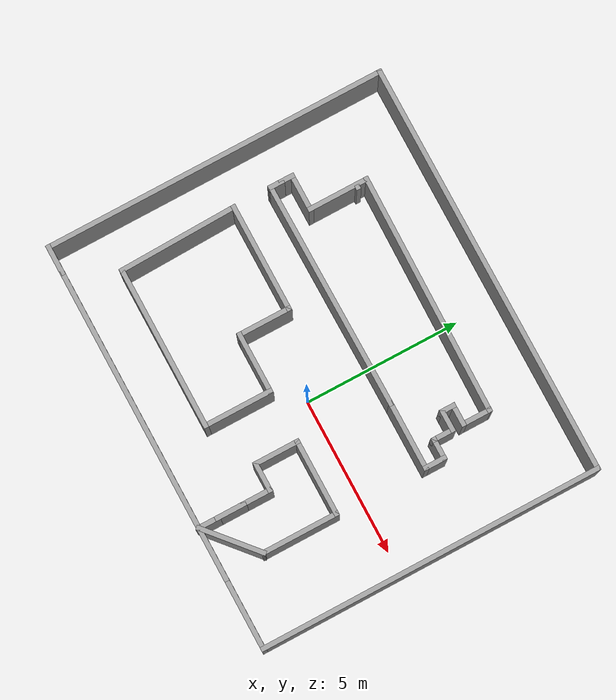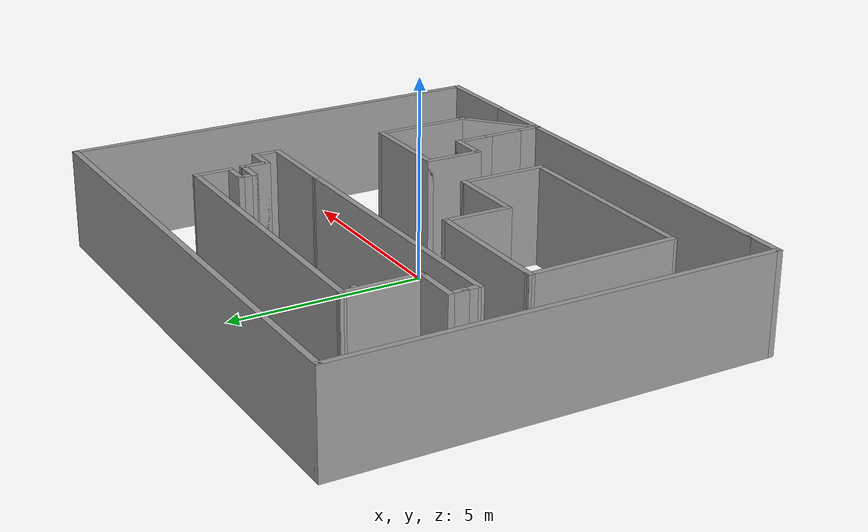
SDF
<sdf version="1.6">
 <world name="default">
  <light name="sun" type="directional">
   <pose>0 0 10 0 -0 0</pose>
   <diffuse>0.8 0.8 0.8 1</diffuse>
   <specular>0.2 0.2 0.2 1</specular>
   <attenuation>
    <range>1000</range>
    <constant>0.9</constant>
    <linear>0.01</linear>
    <quadratic>0.001</quadratic>
   </attenuation>
   <direction>-0.5 0.1 -0.9</direction>
  </light>
  <gravity>0 0 -9.8</gravity>
  <magnetic_field>6e-06 2.3e-05 -4.2e-05</magnetic_field>
  <atmosphere type="adiabatic"/>
  <physics name="default_physics" default="0" type="ode">
   <max_step_size>0.001</max_step_size>
   <real_time_factor>1</real_time_factor>
   <real_time_update_rate>1000</real_time_update_rate>
  </physics>
  <scene><ambient>0.4 0.4 0.4 1</ambient><background>0.7 0.7 0.7 1</background><shadows>1</shadows></scene>
  <spherical_coordinates>
   <surface_model>EARTH_WGS84</surface_model>
   <latitude_deg>0</latitude_deg>
   <longitude_deg>0</longitude_deg>
   <elevation>0</elevation>
   <heading_deg>0</heading_deg>
  </spherical_coordinates>
  <model name="model">
   <pose>-0.729856 0.868092 0 0 -0 0</pose>
   <link name="Wall_0">
    <collision name="Wall_0_Collision">
     <geometry><box><size>7.71488 0.15 2.5</size></box></geometry>
     <pose>0 0 1.25 0 -0 0</pose>
    </collision>
    <visual name="Wall_0_Visual">
     <pose>0 0 1.25 0 -0 0</pose>
     <geometry><box><size>7.71488 0.15 2.5</size></box></geometry>
     <material>
      <script><uri>file://media/materials/scripts/gazebo.material</uri><name>Gazebo/Grey</name></script>
      <ambient>1 1 1 1</ambient>
     </material>
     <meta><layer>0</layer></meta>
    </visual>
    <pose>-0.175394 3.55957 0 0 -0 -0.011642</pose>
   </link>
   <link name="Wall_1">
    <collision name="Wall_1_Collision">
     <geometry><box><size>1 0.15 2.5</size></box></geometry>
     <pose>0 0 1.25 0 -0 0</pose>
    </collision>
    <visual name="Wall_1_Visual">
     <pose>0 0 1.25 0 -0 0</pose>
     <geometry><box><size>1 0.15 2.5</size></box></geometry>
     <material>
      <script><uri>file://media/materials/scripts/gazebo.material</uri><name>Gazebo/Grey</name></script>
      <ambient>1 1 1 1</ambient>
     </material>
     <meta><layer>0</layer></meta>
    </visual>
    <pose>3.60695 3.09054 0 0 -0 -1.5708</pose>
   </link>
   <link name="Wall_12">
    <collision name="Wall_12_Collision">
     <geometry><box><size>3.5 0.15 2.5</size></box></geometry>
     <pose>0 0 1.25 0 -0 0</pose>
    </collision>
    <visual name="Wall_12_Visual">
     <pose>0 0 1.25 0 -0 0</pose>
     <geometry><box><size>3.5 0.15 2.5</size></box></geometry>
     <material>
      <script><uri>file://media/materials/scripts/gazebo.material</uri><name>Gazebo/Grey</name></script>
      <ambient>1 1 1 1</ambient>
     </material>
     <meta><layer>0</layer></meta>
    </visual>
    <pose>-3.375 -0.159602 0 0 -0 3.14159</pose>
   </link>
   <link name="Wall_15">
    <collision name="Wall_15_Collision">
     <geometry><box><size>0.15 0.15 2.5</size></box></geometry>
     <pose>0 0 1.25 0 -0 0</pose>
    </collision>
    <visual name="Wall_15_Visual">
     <pose>0 0 1.25 0 -0 0</pose>
     <geometry><box><size>0.15 0.15 2.5</size></box></geometry>
     <material>
      <script><uri>file://media/materials/scripts/gazebo.material</uri><name>Gazebo/Grey</name></script>
      <ambient>1 1 1 1</ambient>
     </material>
     <meta><layer>0</layer></meta>
    </visual>
    <pose>-3.86715 3.26554 0 0 -0 0</pose>
   </link>
   <link name="Wall_18">
    <collision name="Wall_18_Collision">
     <geometry><box><size>2 0.15 2.5</size></box></geometry>
     <pose>0 0 1.25 0 -0 0</pose>
    </collision>
    <visual name="Wall_18_Visual">
     <pose>0 0 1.25 0 -0 0</pose>
     <geometry><box><size>2 0.15 2.5</size></box></geometry>
     <material>
      <script><uri>file://media/materials/scripts/gazebo.material</uri><name>Gazebo/Grey</name></script>
      <ambient>1 1 1 1</ambient>
     </material>
     <meta><layer>0</layer></meta>
    </visual>
    <pose>-3.95774 2.67861 0 0 -0 -1.5708</pose>
   </link>
   <link name="Wall_19">
    <collision name="Wall_19_Collision">
     <geometry><box><size>1.25 0.15 2.5</size></box></geometry>
     <pose>0 0 1.25 0 -0 0</pose>
    </collision>
    <visual name="Wall_19_Visual">
     <pose>0 0 1.25 0 -0 0</pose>
     <geometry><box><size>1.25 0.15 2.5</size></box></geometry>
     <material>
      <script><uri>file://media/materials/scripts/gazebo.material</uri><name>Gazebo/Grey</name></script>
      <ambient>1 1 1 1</ambient>
     </material>
     <meta><layer>0</layer></meta>
    </visual>
    <pose>-4.50774 1.75361 0 0 -0 3.14159</pose>
   </link>
   <link name="Wall_2">
    <collision name="Wall_2_Collision">
     <geometry><box><size>0.75 0.15 2.5</size></box></geometry>
     <pose>0 0 1.25 0 -0 0</pose>
    </collision>
    <visual name="Wall_2_Visual">
     <pose>0 0 1.25 0 -0 0</pose>
     <geometry><box><size>0.75 0.15 2.5</size></box></geometry>
     <material>
      <script><uri>file://media/materials/scripts/gazebo.material</uri><name>Gazebo/Grey</name></script>
      <ambient>1 1 1 1</ambient>
     </material>
     <meta><layer>0</layer></meta>
    </visual>
    <pose>3.30695 2.66554 0 0 -0 3.14159</pose>
   </link>
   <link name="Wall_23">
    <collision name="Wall_23_Collision">
     <geometry><box><size>0.5 0.15 2.5</size></box></geometry>
     <pose>0 0 1.25 0 -0 0</pose>
    </collision>
    <visual name="Wall_23_Visual">
     <pose>0 0 1.25 0 -0 0</pose>
     <geometry><box><size>0.5 0.15 2.5</size></box></geometry>
     <material>
      <script><uri>file://media/materials/scripts/gazebo.material</uri><name>Gazebo/Grey</name></script>
      <ambient>1 1 1 1</ambient>
     </material>
     <meta><layer>0</layer></meta>
    </visual>
    <pose>-5.05774 1.57861 0 0 -0 -1.5708</pose>
   </link>
   <link name="Wall_24">
    <collision name="Wall_24_Collision">
     <geometry><box><size>0.5 0.15 2.5</size></box></geometry>
     <pose>0 0 1.25 0 -0 0</pose>
    </collision>
    <visual name="Wall_24_Visual">
     <pose>0 0 1.25 0 -0 0</pose>
     <geometry><box><size>0.5 0.15 2.5</size></box></geometry>
     <material>
      <script><uri>file://media/materials/scripts/gazebo.material</uri><name>Gazebo/Grey</name></script>
      <ambient>1 1 1 1</ambient>
     </material>
     <meta><layer>0</layer></meta>
    </visual>
    <pose>-5.05774 1.22861 0 0 -0 -1.5708</pose>
   </link>
   <link name="Wall_25">
    <collision name="Wall_25_Collision">
     <geometry><box><size>7.31496 0.15 2.5</size></box></geometry>
     <pose>0 0 1.25 0 -0 0</pose>
    </collision>
    <visual name="Wall_25_Visual">
     <pose>0 0 1.25 0 -0 0</pose>
     <geometry><box><size>7.31496 0.15 2.5</size></box></geometry>
     <material>
      <script><uri>file://media/materials/scripts/gazebo.material</uri><name>Gazebo/Grey</name></script>
      <ambient>1 1 1 1</ambient>
     </material>
     <meta><layer>0</layer></meta>
    </visual>
    <pose>-1.47539 1.08457 0 0 -0 0.008643</pose>
   </link>
   <link name="Wall_27">
    <collision name="Wall_27_Collision">
     <geometry><box><size>1.75 0.15 2.5</size></box></geometry>
     <pose>0 0 1.25 0 -0 0</pose>
    </collision>
    <visual name="Wall_27_Visual">
     <pose>0 0 1.25 0 -0 0</pose>
     <geometry><box><size>1.75 0.15 2.5</size></box></geometry>
     <material>
      <script><uri>file://media/materials/scripts/gazebo.material</uri><name>Gazebo/Grey</name></script>
      <ambient>1 1 1 1</ambient>
     </material>
     <meta><layer>0</layer></meta>
    </visual>
    <pose>-1.7 -0.959602 0 0 -0 -1.5708</pose>
   </link>
   <link name="Wall_29">
    <collision name="Wall_29_Collision">
     <geometry><box><size>2.5 0.15 2.5</size></box></geometry>
     <pose>0 0 1.25 0 -0 0</pose>
    </collision>
    <visual name="Wall_29_Visual">
     <pose>0 0 1.25 0 -0 0</pose>
     <geometry><box><size>2.5 0.15 2.5</size></box></geometry>
     <material>
      <script><uri>file://media/materials/scripts/gazebo.material</uri><name>Gazebo/Grey</name></script>
      <ambient>1 1 1 1</ambient>
     </material>
     <meta><layer>0</layer></meta>
    </visual>
    <pose>4.15 -2.9346 0 0 -0 -1.5708</pose>
   </link>
   <link name="Wall_3">
    <collision name="Wall_3_Collision">
     <geometry><box><size>0.5 0.15 2.5</size></box></geometry>
     <pose>0 0 1.25 0 -0 0</pose>
    </collision>
    <visual name="Wall_3_Visual">
     <pose>0 0 1.25 0 -0 0</pose>
     <geometry><box><size>0.5 0.15 2.5</size></box></geometry>
     <material>
      <script><uri>file://media/materials/scripts/gazebo.material</uri><name>Gazebo/Grey</name></script>
      <ambient>1 1 1 1</ambient>
     </material>
     <meta><layer>0</layer></meta>
    </visual>
    <pose>3.00695 2.49054 0 0 -0 -1.5708</pose>
   </link>
   <link name="Wall_32">
    <collision name="Wall_32_Collision">
     <geometry><box><size>2 0.15 2.5</size></box></geometry>
     <pose>0 0 1.25 0 -0 0</pose>
    </collision>
    <visual name="Wall_32_Visual">
     <pose>0 0 1.25 0 -0 0</pose>
     <geometry><box><size>2 0.15 2.5</size></box></geometry>
     <material>
      <script><uri>file://media/materials/scripts/gazebo.material</uri><name>Gazebo/Grey</name></script>
      <ambient>1 1 1 1</ambient>
     </material>
     <meta><layer>0</layer></meta>
    </visual>
    <pose>-0.775 -1.7596 0 0 -0 0</pose>
   </link>
   <link name="Wall_33">
    <collision name="Wall_33_Collision">
     <geometry><box><size>2.25 0.15 2.5</size></box></geometry>
     <pose>0 0 1.25 0 -0 0</pose>
    </collision>
    <visual name="Wall_33_Visual">
     <pose>0 0 1.25 0 -0 0</pose>
     <geometry><box><size>2.25 0.15 2.5</size></box></geometry>
     <material>
      <script><uri>file://media/materials/scripts/gazebo.material</uri><name>Gazebo/Grey</name></script>
      <ambient>1 1 1 1</ambient>
     </material>
     <meta><layer>0</layer></meta>
    </visual>
    <pose>0.15 -2.8096 0 0 -0 -1.5708</pose>
   </link>
   <link name="Wall_34">
    <collision name="Wall_34_Collision">
     <geometry><box><size>5.25 0.15 2.5</size></box></geometry>
     <pose>0 0 1.25 0 -0 0</pose>
    </collision>
    <visual name="Wall_34_Visual">
     <pose>0 0 1.25 0 -0 0</pose>
     <geometry><box><size>5.25 0.15 2.5</size></box></geometry>
     <material>
      <script><uri>file://media/materials/scripts/gazebo.material</uri><name>Gazebo/Grey</name></script>
      <ambient>1 1 1 1</ambient>
     </material>
     <meta><layer>0</layer></meta>
    </visual>
    <pose>-2.4 -3.8596 0 0 -0 3.14159</pose>
   </link>
   <link name="Wall_35">
    <collision name="Wall_35_Collision">
     <geometry><box><size>3.85135 0.15 2.5</size></box></geometry>
     <pose>0 0 1.25 0 -0 0</pose>
    </collision>
    <visual name="Wall_35_Visual">
     <pose>0 0 1.25 0 -0 0</pose>
     <geometry><box><size>3.85135 0.15 2.5</size></box></geometry>
     <material>
      <script><uri>file://media/materials/scripts/gazebo.material</uri><name>Gazebo/Grey</name></script>
      <ambient>1 1 1 1</ambient>
     </material>
     <meta><layer>0</layer></meta>
    </visual>
    <pose>-5 -2.0096 0 0 -0 1.59782</pose>
   </link>
   <link name="Wall_37">
    <collision name="Wall_37_Collision">
     <geometry><box><size>2.5 0.15 2.5</size></box></geometry>
     <pose>0 0 1.25 0 -0 0</pose>
    </collision>
    <visual name="Wall_37_Visual">
     <pose>0 0 1.25 0 -0 0</pose>
     <geometry><box><size>2.5 0.15 2.5</size></box></geometry>
     <material>
      <script><uri>file://media/materials/scripts/gazebo.material</uri><name>Gazebo/Grey</name></script>
      <ambient>1 1 1 1</ambient>
     </material>
     <meta><layer>0</layer></meta>
    </visual>
    <pose>2.975 -1.7596 0 0 -0 3.14159</pose>
   </link>
   <link name="Wall_38">
    <collision name="Wall_38_Collision">
     <geometry><box><size>1.5 0.15 2.5</size></box></geometry>
     <pose>0 0 1.25 0 -0 0</pose>
    </collision>
    <visual name="Wall_38_Visual">
     <pose>0 0 1.25 0 -0 0</pose>
     <geometry><box><size>1.5 0.15 2.5</size></box></geometry>
     <material>
      <script><uri>file://media/materials/scripts/gazebo.material</uri><name>Gazebo/Grey</name></script>
      <ambient>1 1 1 1</ambient>
     </material>
     <meta><layer>0</layer></meta>
    </visual>
    <pose>1.8 -2.4346 0 0 -0 -1.5708</pose>
   </link>
   <link name="Wall_39">
    <collision name="Wall_39_Collision">
     <geometry><box><size>1 0.15 2.5</size></box></geometry>
     <pose>0 0 1.25 0 -0 0</pose>
    </collision>
    <visual name="Wall_39_Visual">
     <pose>0 0 1.25 0 -0 0</pose>
     <geometry><box><size>1 0.15 2.5</size></box></geometry>
     <material>
      <script><uri>file://media/materials/scripts/gazebo.material</uri><name>Gazebo/Grey</name></script>
      <ambient>1 1 1 1</ambient>
     </material>
     <meta><layer>0</layer></meta>
    </visual>
    <pose>2.225 -3.1096 0 0 -0 0</pose>
   </link>
   <link name="Wall_4">
    <collision name="Wall_4_Collision">
     <geometry><box><size>0.75 0.15 2.5</size></box></geometry>
     <pose>0 0 1.25 0 -0 0</pose>
    </collision>
    <visual name="Wall_4_Visual">
     <pose>0 0 1.25 0 -0 0</pose>
     <geometry><box><size>0.75 0.15 2.5</size></box></geometry>
     <material>
      <script><uri>file://media/materials/scripts/gazebo.material</uri><name>Gazebo/Grey</name></script>
      <ambient>1 1 1 1</ambient>
     </material>
     <meta><layer>0</layer></meta>
    </visual>
    <pose>3.30695 2.31554 0 0 -0 0</pose>
   </link>
   <link name="Wall_40">
    <collision name="Wall_40_Collision">
     <geometry><box><size>1 0.15 2.5</size></box></geometry>
     <pose>0 0 1.25 0 -0 0</pose>
    </collision>
    <visual name="Wall_40_Visual">
     <pose>0 0 1.25 0 -0 0</pose>
     <geometry><box><size>1 0.15 2.5</size></box></geometry>
     <material>
      <script><uri>file://media/materials/scripts/gazebo.material</uri><name>Gazebo/Grey</name></script>
      <ambient>1 1 1 1</ambient>
     </material>
     <meta><layer>0</layer></meta>
    </visual>
    <pose>2.65 -3.5346 0 0 -0 -1.5708</pose>
   </link>
   <link name="Wall_41">
    <collision name="Wall_41_Collision">
     <geometry><box><size>1 0.15 2.5</size></box></geometry>
     <pose>0 0 1.25 0 -0 0</pose>
    </collision>
    <visual name="Wall_41_Visual">
     <pose>0 0 1.25 0 -0 0</pose>
     <geometry><box><size>1 0.15 2.5</size></box></geometry>
     <material>
      <script><uri>file://media/materials/scripts/gazebo.material</uri><name>Gazebo/Grey</name></script>
      <ambient>1 1 1 1</ambient>
     </material>
     <meta><layer>0</layer></meta>
    </visual>
    <pose>2.65 -4.3846 0 0 -0 -1.5708</pose>
   </link>
   <link name="Wall_42">
    <collision name="Wall_42_Collision">
     <geometry><box><size>0.75 0.15 2.5</size></box></geometry>
     <pose>0 0 1.25 0 -0 0</pose>
    </collision>
    <visual name="Wall_42_Visual">
     <pose>0 0 1.25 0 -0 0</pose>
     <geometry><box><size>0.75 0.15 2.5</size></box></geometry>
     <material>
      <script><uri>file://media/materials/scripts/gazebo.material</uri><name>Gazebo/Grey</name></script>
      <ambient>1 1 1 1</ambient>
     </material>
     <meta><layer>0</layer></meta>
    </visual>
    <pose>2.65 -5.1096 0 0 -0 -1.5708</pose>
   </link>
   <link name="Wall_43">
    <collision name="Wall_43_Collision">
     <geometry><box><size>8.5 0.15 2.5</size></box></geometry>
     <pose>0 0 1.25 0 -0 0</pose>
    </collision>
    <visual name="Wall_43_Visual">
     <pose>0 0 1.25 0 -0 0</pose>
     <geometry><box><size>8.5 0.15 2.5</size></box></geometry>
     <material>
      <script><uri>file://media/materials/scripts/gazebo.material</uri><name>Gazebo/Grey</name></script>
      <ambient>1 1 1 1</ambient>
     </material>
     <meta><layer>0</layer></meta>
    </visual>
    <pose>-1.525 -5.4096 0 0 -0 3.14159</pose>
   </link>
   <link name="Wall_44">
    <collision name="Wall_44_Collision">
     <geometry><box><size>1 0.15 2.5</size></box></geometry>
     <pose>0 0 1.25 0 -0 0</pose>
    </collision>
    <visual name="Wall_44_Visual">
     <pose>0 0 1.25 0 -0 0</pose>
     <geometry><box><size>1 0.15 2.5</size></box></geometry>
     <material>
      <script><uri>file://media/materials/scripts/gazebo.material</uri><name>Gazebo/Grey</name></script>
      <ambient>1 1 1 1</ambient>
     </material>
     <meta><layer>0</layer></meta>
    </visual>
    <pose>-6.125 -5.4096 0 0 -0 3.14159</pose>
   </link>
   <link name="Wall_45">
    <collision name="Wall_45_Collision">
     <geometry><box><size>11 0.15 2.5</size></box></geometry>
     <pose>0 0 1.25 0 -0 0</pose>
    </collision>
    <visual name="Wall_45_Visual">
     <pose>0 0 1.25 0 -0 0</pose>
     <geometry><box><size>11 0.15 2.5</size></box></geometry>
     <material>
      <script><uri>file://media/materials/scripts/gazebo.material</uri><name>Gazebo/Grey</name></script>
      <ambient>1 1 1 1</ambient>
     </material>
     <meta><layer>0</layer></meta>
    </visual>
    <pose>-6.55 0.015398 0 0 -0 1.5708</pose>
   </link>
   <link name="Wall_46">
    <collision name="Wall_46_Collision">
     <geometry><box><size>13.25 0.15 2.5</size></box></geometry>
     <pose>0 0 1.25 0 -0 0</pose>
    </collision>
    <visual name="Wall_46_Visual">
     <pose>0 0 1.25 0 -0 0</pose>
     <geometry><box><size>13.25 0.15 2.5</size></box></geometry>
     <material>
      <script><uri>file://media/materials/scripts/gazebo.material</uri><name>Gazebo/Grey</name></script>
      <ambient>1 1 1 1</ambient>
     </material>
     <meta><layer>0</layer></meta>
    </visual>
    <pose>-0 5.4404 0 0 -0 0</pose>
   </link>
   <link name="Wall_47">
    <collision name="Wall_47_Collision">
     <geometry><box><size>11 0.15 2.5</size></box></geometry>
     <pose>0 0 1.25 0 -0 0</pose>
    </collision>
    <visual name="Wall_47_Visual">
     <pose>0 0 1.25 0 -0 0</pose>
     <geometry><box><size>11 0.15 2.5</size></box></geometry>
     <material>
      <script><uri>file://media/materials/scripts/gazebo.material</uri><name>Gazebo/Grey</name></script>
      <ambient>1 1 1 1</ambient>
     </material>
     <meta><layer>0</layer></meta>
    </visual>
    <pose>6.55 0.015398 0 0 -0 -1.5708</pose>
   </link>
   <link name="Wall_48">
    <collision name="Wall_48_Collision">
     <geometry><box><size>2.25 0.15 2.5</size></box></geometry>
     <pose>0 0 1.25 0 -0 0</pose>
    </collision>
    <visual name="Wall_48_Visual">
     <pose>0 0 1.25 0 -0 0</pose>
     <geometry><box><size>2.25 0.15 2.5</size></box></geometry>
     <material>
      <script><uri>file://media/materials/scripts/gazebo.material</uri><name>Gazebo/Grey</name></script>
      <ambient>1 1 1 1</ambient>
     </material>
     <meta><layer>0</layer></meta>
    </visual>
    <pose>5.5 -5.4096 0 0 -0 3.14159</pose>
   </link>
   <link name="Wall_49">
    <collision name="Wall_49_Collision">
     <geometry><box><size>1.95 0.15 2.5</size></box></geometry>
     <pose>0 0 1.25 0 -0 0</pose>
    </collision>
    <visual name="Wall_49_Visual">
     <pose>0 0 1.25 0 -0 0</pose>
     <geometry><box><size>1.95 0.15 2.5</size></box></geometry>
     <material>
      <script><uri>file://media/materials/scripts/gazebo.material</uri><name>Gazebo/Grey</name></script>
      <ambient>1 1 1 1</ambient>
     </material>
     <meta><layer>0</layer></meta>
    </visual>
    <pose>3.55 -5.4096 0 0 -0 3.14159</pose>
   </link>
   <link name="Wall_5">
    <collision name="Wall_5_Collision">
     <geometry><box><size>0.75 0.15 2.5</size></box></geometry>
     <pose>0 0 1.25 0 -0 0</pose>
    </collision>
    <visual name="Wall_5_Visual">
     <pose>0 0 1.25 0 -0 0</pose>
     <geometry><box><size>0.75 0.15 2.5</size></box></geometry>
     <material>
      <script><uri>file://media/materials/scripts/gazebo.material</uri><name>Gazebo/Grey</name></script>
      <ambient>1 1 1 1</ambient>
     </material>
     <meta><layer>0</layer></meta>
    </visual>
    <pose>3.60695 2.01554 0 0 -0 -1.5708</pose>
   </link>
   <link name="Wall_50">
    <collision name="Wall_50_Collision">
     <geometry><box><size>2.13494 0.15 2.5</size></box></geometry>
     <pose>0 0 1.25 0 -0 0</pose>
    </collision>
    <visual name="Wall_50_Visual">
     <pose>0 0 1.25 0 -0 0</pose>
     <geometry><box><size>2.13494 0.15 2.5</size></box></geometry>
     <material>
      <script><uri>file://media/materials/scripts/gazebo.material</uri><name>Gazebo/Grey</name></script>
      <ambient>1 1 1 1</ambient>
     </material>
     <meta><layer>0</layer></meta>
    </visual>
    <pose>3.4 -4.7596 0 0 -0 0.714091</pose>
   </link>
   <link name="Wall_6">
    <collision name="Wall_6_Collision">
     <geometry><box><size>0.75 0.15 2.5</size></box></geometry>
     <pose>0 0 1.25 0 -0 0</pose>
    </collision>
    <visual name="Wall_6_Visual">
     <pose>0 0 1.25 0 -0 0</pose>
     <geometry><box><size>0.75 0.15 2.5</size></box></geometry>
     <material>
      <script><uri>file://media/materials/scripts/gazebo.material</uri><name>Gazebo/Grey</name></script>
      <ambient>1 1 1 1</ambient>
     </material>
     <meta><layer>0</layer></meta>
    </visual>
    <pose>3.90695 1.71554 0 0 -0 0</pose>
   </link>
   <link name="Wall_7">
    <collision name="Wall_7_Collision">
     <geometry><box><size>0.75 0.15 2.5</size></box></geometry>
     <pose>0 0 1.25 0 -0 0</pose>
    </collision>
    <visual name="Wall_7_Visual">
     <pose>0 0 1.25 0 -0 0</pose>
     <geometry><box><size>0.75 0.15 2.5</size></box></geometry>
     <material>
      <script><uri>file://media/materials/scripts/gazebo.material</uri><name>Gazebo/Grey</name></script>
      <ambient>1 1 1 1</ambient>
     </material>
     <meta><layer>0</layer></meta>
    </visual>
    <pose>4.20695 1.41554 0 0 -0 -1.5708</pose>
   </link>
   <link name="Wall_8">
    <collision name="Wall_8_Collision">
     <geometry><box><size>2.25 0.15 2.5</size></box></geometry>
     <pose>0 0 1.25 0 -0 0</pose>
    </collision>
    <visual name="Wall_8_Visual">
     <pose>0 0 1.25 0 -0 0</pose>
     <geometry><box><size>2.25 0.15 2.5</size></box></geometry>
     <material>
      <script><uri>file://media/materials/scripts/gazebo.material</uri><name>Gazebo/Grey</name></script>
      <ambient>1 1 1 1</ambient>
     </material>
     <meta><layer>0</layer></meta>
    </visual>
    <pose>3.15695 1.11554 0 0 -0 3.14159</pose>
   </link>
   <static>1</static>
  </model>
 </world>
</sdf>
